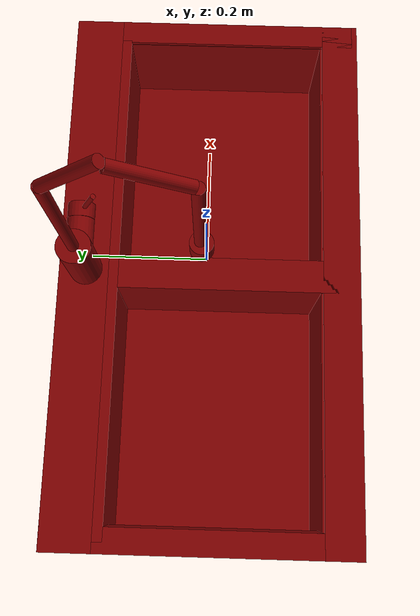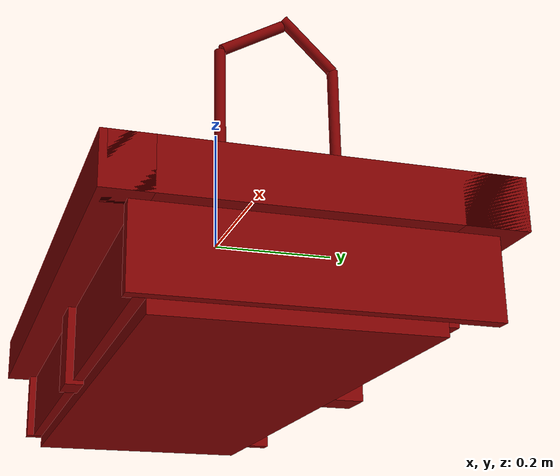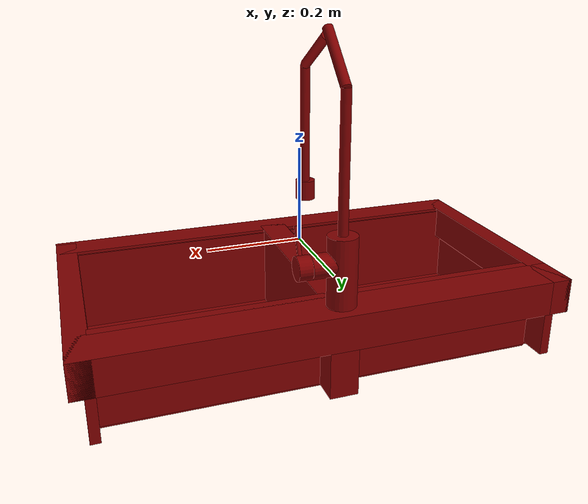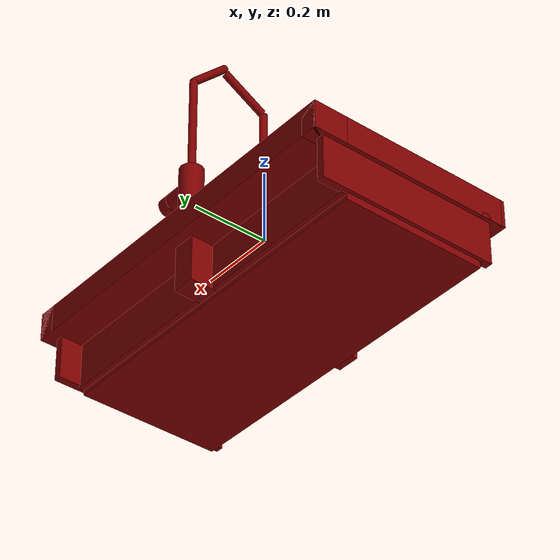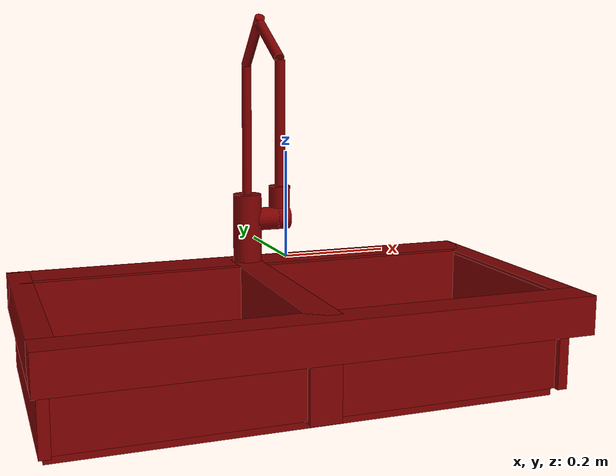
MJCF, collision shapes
<mujoco model="model">
  <asset>
    <texture type="2d" name="image3" file="visuals/image3.png"/>
    <texture type="2d" name="image0" file="visuals/image0.png"/>
    <material name="Baked_Faucet" texture="image3" specular="0.5" shininess="0.25"/>
    <material name="Baked_Sink" texture="image0" specular="0.5" shininess="0.25"/>
    <mesh file="visuals/model_0.obj" name="model_0_vis" scale="1 1 1"/>
    <mesh file="visuals/model_1.obj" name="model_1_vis" scale="1 1 1"/>
    <mesh file="visuals/spout_0.obj" name="spout_0_vis" scale="1 1 1"/>
    <mesh file="visuals/handle_0.obj" name="handle_0_vis" scale="1 1 1"/>
  </asset>
  <default>
    <default class="visual">
      <geom conaffinity="0" contype="0" group="1" type="mesh"/>
    </default>
    <default class="collision">
      <geom group="0" rgba="0.5 0 0 0.5" solimp="0.998 0.998 0.001" solref="0.001 2"/>
    </default>
    <default class="region">
      <geom group="1" conaffinity="0" contype="0" rgba="0 1 0 0"/>
    </default>
  </default>
  <worldbody>
    <body>
      <!-- exterior bounding box points -->
      <!-- interior bounding box points (LEFT) -->
      <!-- interior bounding box points (RIGHT) -->
      <body name="object">
        <geom solimp="0.998 0.998 0.001" solref="0.001 1" density="100" friction="0.95 0.3 0.1" type="mesh" mesh="model_0_vis" material="Baked_Faucet" class="visual"/>
        <geom solimp="0.998 0.998 0.001" solref="0.001 1" density="100" friction="0.95 0.3 0.1" type="mesh" mesh="model_1_vis" material="Baked_Sink" class="visual"/>
        <!-- Bottom -->
        <geom class="collision" type="box" pos="-0.011 -0.022 -0.25" size="0.47 0.19 0.01"/>
        <!-- Center Wall -->
        <geom class="collision" type="box" pos="-0.011 0 -0.15" size="0.03 0.24 0.097"/>
        <!-- Back Wall -->
        <geom class="collision" type="box" pos="-0.011 0.172 -0.15" size="0.47 0.01 0.097"/>
        <!-- Front Wall -->
        <geom class="collision" type="box" pos="-0.011 -0.218 -0.15" size="0.47 0.01 0.0907"/>
        <!-- Right Wall -->
        <geom class="collision" type="box" pos="0.465 0 -0.15" size="0.01 0.24 0.0907"/>
        <!-- Left Wall -->
        <geom class="collision" type="box" pos="-0.48 0 -0.15" size="0.01 0.24 0.0907"/>
        <!-- Back Ledge -->
        <geom class="collision" type="box" pos="0 0.225 -0.09" size="0.5 0.045 0.037"/>
        <!-- Front Ledge -->
        <geom class="collision" type="box" pos="0 -0.246 -0.09" size="0.5 0.034 0.037"/>
        <!-- Right Ledge -->
        <geom class="collision" type="box" pos="0.478 0 -0.09" size="0.022 0.27 0.037"/>
        <!-- Left Ledge -->
        <geom class="collision" type="box" pos="-0.478 0 -0.09" size="0.022 0.27 0.037"/>
        <!-- Faucet Base -->
        <geom class="collision" type="cylinder" pos="-0.008 0.221 0.0185" size="0.03 0.071 0"/>
        <!-- Handle Attach Point-->
        <geom class="collision" type="cylinder" pos="0.032 0.221 0.0348" size="0.024 0.024 0" axisangle="0 1 0 90"/>
        <body name="spout">
          <joint axis="0 0 1" limited="true" name="faucet_joint" range="-90 90" pos="-0.008 0.221 0.0185" armature="2"/>
          <geom solimp="0.998 0.998 0.001" solref="0.001 1" density="100" friction="0.95 0.3 0.1" type="mesh" mesh="spout_0_vis" material="Baked_Faucet" class="visual"/>
          <!-- Faucet -->
          <geom class="collision" type="cylinder" pos="-0.008 0.221 0.22" size="0.01 0.14 0"/>
          <geom class="collision" type="cylinder" pos="-0.008 0.175 0.405" size="0.01 0.065 0" axisangle="1 0 0 45"/>
          <geom class="collision" type="cylinder" pos="-0.008 0.07 0.405" size="0.01 0.065 0" axisangle="1 0 0 -60"/>
          <geom class="collision" type="cylinder" pos="-0.008 0.01 0.25" size="0.01 0.12 0"/>
          <geom class="collision" type="cylinder" pos="-0.01 0.008 0.115" size="0.02 0.02 0"/>
        </body>
        <body name="handle">
          <joint axis="1 0 0" limited="true" name="knob_joint" range="-112.6 77.4" pos="0.07 0.221 0.0348"/>
          <joint axis="0 1 0" type="hinge" limited="true" name="knob_hinge_joint" range="0 10" pos="0.052 0.221 0.03"/>
          <geom solimp="0.998 0.998 0.001" solref="0.001 1" density="100" friction="0.95 0.3 0.1" type="mesh" mesh="handle_0_vis" material="Baked_Faucet" class="visual"/>
          <!-- Main -->
          <geom class="collision" type="cylinder" pos="0.07 0.221 0.0348" size="0.024 0.0135 0" axisangle="0 1 0 90"/>
          <!-- Handle -->
          <geom class="collision" type="cylinder" pos="0.073 0.2015 0.081" size="0.0045 0.028 0" axisangle="1 0 0 22.6"/>
        </body>
        <geom class="region" name="reg_main" type="box" pos="0.0 0.0 -0.1565" size="0.5 0.28 0.10350000000000001"/>
        <geom class="region" name="reg_basin_left" type="box" pos="-0.2555 -0.022999999999999993 -0.1465" size="0.2145 0.185 0.0935"/>
        <geom class="region" name="reg_basin_right" type="box" pos="0.23700000000000002 -0.022999999999999993 -0.1465" size="0.218 0.185 0.0935"/>
      </body>
    </body>
  </worldbody>
</mujoco>
